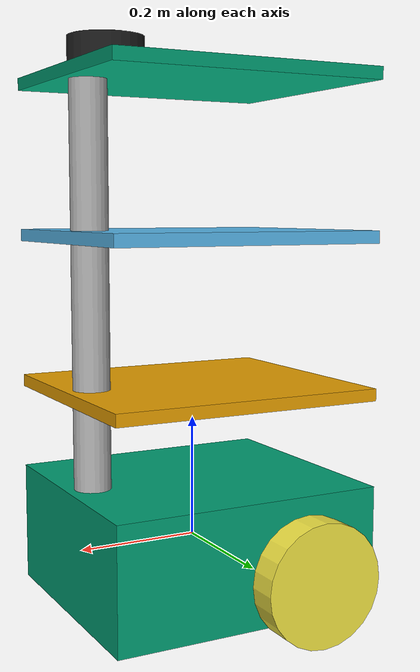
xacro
<?xml version="1.0"?>
<robot name="cafe_robot" xmlns:xacro="http://www.ros.org/wiki/xacro">

    <xacro:include filename="gazebo_plugins.xacro"/>
    <xacro:include filename="inertia_params.xacro"/>

    <!--                Dimensions              -->
    <xacro:property name="chassis_length" value="0.45"/>
    <xacro:property name="chassis_width" value="0.4"/>
    <xacro:property name="chassis_height" value="0.2"/>
    <xacro:property name="wheel_thk" value="0.05"/>
    <xacro:property name="wheel_radius" value="0.1"/>
    <xacro:property name="lidar_radius" value="0.06"/>
    <xacro:property name="lidar_height" value="0.05"/>
    <xacro:property name="support_height" value="0.65"/>
    <xacro:property name="support_radius" value="0.03"/>
    <xacro:property name="support_pos_z" value="0.425"/>

    <!--                Base Link               -->
    <link name="base_link"/>

    <joint name="base_footprint_joint" type="fixed">
        <parent link="base_link"/>
        <child link="base_footprint"/>
        <origin xyz="0 0 0" rpy="0 0 0"/>
    </joint>

    <link name="base_footprint"/>

    <!--                Chassis Joint               -->
    <joint name="chassis_joint" type="fixed">
        <origin xyz="0.0 0.0 0.0" rpy="0.0 0.0 0.0"/>
        <parent link="base_link"/>
        <child link="chassis_link"/>
        <axis xyz="0.0 0.0 0.0"/>
    </joint>

    <link name="chassis_link">
        <xacro:box_inertia mass="2.5" x="${chassis_length}" y="${chassis_width}" z="${chassis_height}">
            <origin xyz="0 0 0" rpy="0 0 0"/>
        </xacro:box_inertia>
        <visual>
            <origin xyz="0.0 0.0 0.0" rpy="0.0 0.0 0.0"/>
            <geometry>
                <box size="${chassis_length} ${chassis_width} ${chassis_height}"/>
            </geometry>
        </visual>
        <collision>
            <origin xyz="0.0 0.0 0.0" rpy="0.0 0.0 0.0"/>
            <geometry>
                <box size="${chassis_length} ${chassis_width} ${chassis_height}"/>
            </geometry>
        </collision>
    </link>

    <!--                Left Wheel Joint               -->
    <joint name="wheel_L_joint" type="continuous">
        <origin xyz="-0.1 0.225 -0.03" rpy="-1.57 0.0 0.0"/>
        <parent link="base_link"/>
        <child link="wheel_L_link"/>
        <axis xyz="0 0 1"/>
    </joint>

    <link name="wheel_L_link">
        <xacro:cylinder_inertia mass="0.3" length="${wheel_thk}" radius="${wheel_radius}">
            <origin xyz="0 0 0" rpy="0 0 0"/>
        </xacro:cylinder_inertia>
        <visual>
            <origin xyz="0.0 0.0 0.0" rpy="0.0 0.0 0.0"/>
            <geometry>
                <cylinder radius="${wheel_radius}" length="${wheel_thk}"/>
            </geometry>
        </visual>
        <collision>
            <origin xyz="0.0 0.0 0.0" rpy="0.0 0.0 0.0"/>
            <geometry>
                <cylinder radius="${wheel_radius}" length="${wheel_thk}"/>
            </geometry>
        </collision>
    </link>

     <!--           Right Wheel Joint              -->
     <joint name="wheel_R_joint" type="continuous">
        <origin xyz="-0.1 -0.225 -0.03" rpy="1.57 0.0 0.0"/>
        <parent link="base_link"/>
        <child link="wheel_R_link"/>
        <axis xyz="0 0 -1"/>
    </joint>

    <link name="wheel_R_link">
        <xacro:cylinder_inertia mass="0.3" length="${wheel_thk}" radius="${wheel_radius}">
            <origin xyz="0 0 0" rpy="0 0 0"/>
        </xacro:cylinder_inertia>
        <visual>
            <origin xyz="0.0 0.0 0.0" rpy="0.0 0.0 0.0"/>
            <geometry>
                <cylinder radius="${wheel_radius}" length="${wheel_thk}"/>
            </geometry>
        </visual>
        <collision>
            <origin xyz="0.0 0.0 0.0" rpy="0.0 0.0 0.0"/>
            <geometry>
                <cylinder radius="${wheel_radius}" length="${wheel_thk}"/>
            </geometry>
        </collision>
    </link>

    <!--                Caster wheel joints & links              -->
    <joint name="caster_wheelF_joint" type="fixed">
        <parent link="chassis_link"/>
        <child link="caster_wheelF"/>
        <origin xyz="0.15 0 -0.1" rpy="0.0 0 0"/>
    </joint>

    <link name="caster_wheelF">
        <xacro:sphere_inertia mass="0.15" radius="0.03">
            <origin xyz="0 0 0" rpy="0 0 0"/>
        </xacro:sphere_inertia>
        <visual>
            <origin xyz="0.0 0.0 0.0" rpy=" 0.0 0.0 0.0"/>
            <geometry>
                <sphere radius="0.03"/>
            </geometry>
        </visual>
        <collision>
            <origin xyz="0.0 0.0 0.0" rpy="0.0 0.0 0.0"/>
            <geometry>
                <sphere radius="0.03"/>
            </geometry>
        </collision>
    </link>

    <gazebo reference="caster_wheelF">
        <mu1 value="0.001"/>
        <mu2 value="0.001"/>
    </gazebo>

    <!--                Laser joint & link              -->
    <joint name="lidar_joint" type="fixed">
        <parent link="chassis_link"/>
        <child link="laser_frame"/>
        <origin xyz="0.15 0 0.78" rpy="0.0 0 0"/>
    </joint>

    <link name="laser_frame">
        <xacro:cylinder_inertia mass="0.200" length="${lidar_height}" radius="${lidar_radius}">
            <origin xyz="0 0 0" rpy="0 0 0"/>
        </xacro:cylinder_inertia>
        <visual>
            <origin xyz="0.0 0.0 0.0" rpy=" 0.0 0.0 0.0"/>
            <geometry>
                <cylinder radius="${lidar_radius}" length="${lidar_height}"/>
            </geometry>
        </visual>
        <collision>
            <origin xyz="0.0 0.0 0.0" rpy="0.0 0.0 0.0"/>
            <geometry>
                <cylinder radius="${lidar_radius}" length="${lidar_height}"/>
            </geometry>
        </collision>
    </link>

    <!--            Support Frames              -->
    <joint name="support1_joint" type="fixed">
        <parent link="chassis_link"/>
        <child link="support1"/>
        <origin xyz="0.18 0 ${support_pos_z}" rpy="0.0 0.0 0.0"/>
    </joint>

    <link name="support1">
        <xacro:cylinder_inertia mass="0.3" length="${support_height}" radius="${support_radius}">
            <origin xyz="0 0 0" rpy="0 0 0"/>
        </xacro:cylinder_inertia>
        <visual>
            <origin xyz="0.0 0.0 0.0" rpy="0.0 0.0 0.0"/>
            <geometry>
                <cylinder radius="${support_radius}" length="${support_height}"/>
            </geometry>
        </visual>
        <collision>
            <origin xyz="0.0 0.0 0.0" rpy="0.0 0.0 0.0"/>
            <geometry>
                <cylinder radius="0.02" length="0.2"/>
            </geometry>
        </collision>
    </link>

    <!--                Level Frames              -->
    <joint name="level1_joint" type="fixed">
        <parent link="chassis_link"/>
        <child link="level1"/>
        <origin xyz="0 0 0.25" rpy="0.0 0.0 0.0"/>
    </joint>

    <link name="level1">
        <xacro:cylinder_inertia mass="0.3" length="${wheel_thk}" radius="${wheel_radius}">
            <origin xyz="0 0 0" rpy="0 0 0"/>
        </xacro:cylinder_inertia>
        <visual>
            <origin xyz="0.0 0.0 0.0" rpy="0.0 0.0 0.0"/>
            <geometry>
                <box size = "${chassis_length} ${chassis_width} 0.02"/>
            </geometry>
        </visual>
        <collision>
            <origin xyz="0.0 0.0 0.0" rpy="0.0 0.0 0.0"/>
            <geometry>
                <box size = "0 0 0"/>
            </geometry>
        </collision>
    </link>

    <joint name="level2_joint" type="fixed">
        <parent link="chassis_link"/>
        <child link="level2"/>
        <origin xyz="0 0 0.5" rpy="0.0 0.0 0.0"/>
    </joint>

    <link name="level2">
        <xacro:cylinder_inertia mass="0.3" length="${wheel_thk}" radius="${wheel_radius}">
            <origin xyz="0 0 0" rpy="0 0 0"/>
        </xacro:cylinder_inertia>
        <visual>
            <origin xyz="0.0 0.0 0.0" rpy="0.0 0.0 0.0"/>
            <geometry>
                <box size = "${chassis_length} ${chassis_width} 0.02"/>
            </geometry>
        </visual>
        <collision>
            <origin xyz="0.0 0.0 0.0" rpy="0.0 0.0 0.0"/>
            <geometry>
                <box size = "0 0 0"/>
            </geometry>
        </collision>
    </link>

    <joint name="level3_joint" type="fixed">
        <parent link="chassis_link"/>
        <child link="level3"/>
        <origin xyz="0 0 0.75" rpy="0.0 0.0 0.0"/>
    </joint>

    <link name="level3">
        <xacro:cylinder_inertia mass="0.3" length="${wheel_thk}" radius="${wheel_radius}">
            <origin xyz="0 0 0" rpy="0 0 0"/>
        </xacro:cylinder_inertia>
        <visual>
            <origin xyz="0.0 0.0 0.0" rpy="0.0 0.0 0.0"/>
            <geometry>
                <box size = "${chassis_length} ${chassis_width} 0.02"/>
            </geometry>
        </visual>
        <collision>
            <origin xyz="0.0 0.0 0.0" rpy="0.0 0.0 0.0"/>
            <geometry>
                <box size = "0 0 0"/>
            </geometry>
        </collision>
    </link>

</robot>
